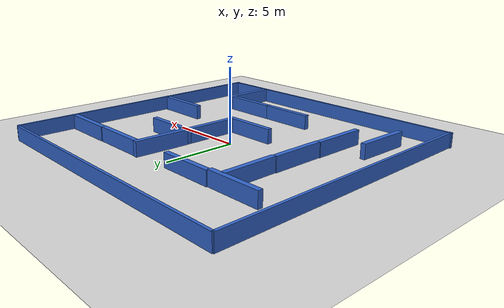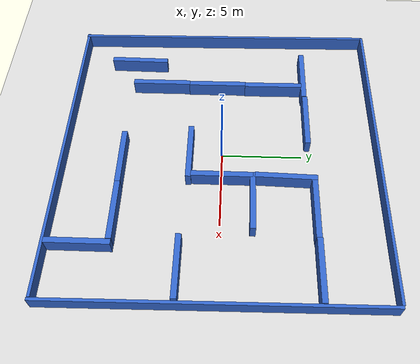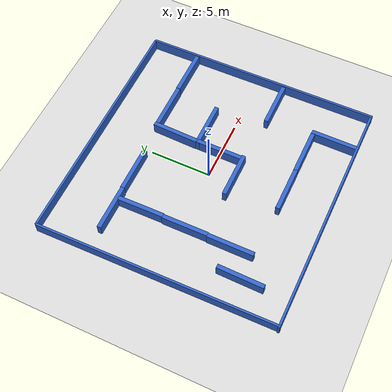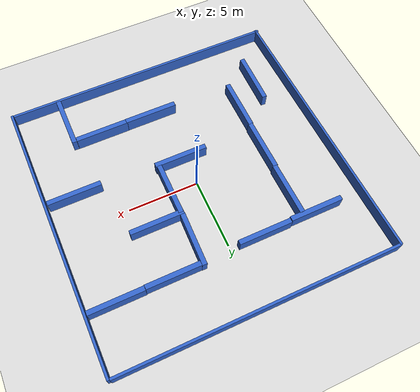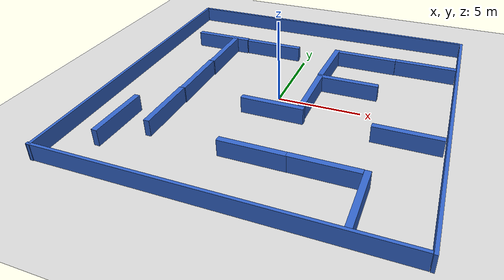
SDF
<sdf version='1.9'>
  <world name='default'>
    <plugin name='gz::sim::systems::Physics' filename='gz-sim-physics-system'/>
    <plugin name='gz::sim::systems::UserCommands' filename='gz-sim-user-commands-system'/>
    <plugin name='gz::sim::systems::SceneBroadcaster' filename='gz-sim-scene-broadcaster-system'/>
    <plugin name='gz::sim::systems::Sensors' filename='gz-sim-sensors-system'/>
    <gravity>0 0 -9.8</gravity>
    <magnetic_field>6e-06 2.3e-05 -4.2e-05</magnetic_field>
    <atmosphere type='adiabatic'/>
    <physics type='ode'>
      <max_step_size>0.001</max_step_size>
      <real_time_factor>1</real_time_factor>
      <real_time_update_rate>1000</real_time_update_rate>
    </physics>
    <scene>
      <ambient>0.8 0.8 0.8 1</ambient>
      <background>0.95 0.95 0.95 1</background>
      <shadows>false</shadows>
    </scene>
    <audio>
      <device>default</device>
    </audio>
    <wind/>
    <spherical_coordinates>
      <surface_model>EARTH_WGS84</surface_model>
      <latitude_deg>0</latitude_deg>
      <longitude_deg>0</longitude_deg>
      <elevation>0</elevation>
      <heading_deg>0</heading_deg>
    </spherical_coordinates>
    <gui fullscreen='false'>
      <camera name='user_camera'>
        <pose>0 -18 14 0.9 0 1.57</pose>
        <view_controller>orbit</view_controller>
        <projection_type>perspective</projection_type>
      </camera>
    </gui>
    <model name='ground_plane'>
      <static>true</static>
      <link name='link'>
        <collision name='collision'>
          <geometry>
            <plane>
              <normal>0 0 1</normal>
              <size>100 100</size>
            </plane>
          </geometry>
          <surface>
            <friction>
              <ode>
                <mu>100</mu>
                <mu2>50</mu2>
              </ode>
              <torsional>
                <ode/>
              </torsional>
            </friction>
            <contact>
              <ode/>
            </contact>
            <bounce/>
          </surface>
          <max_contacts>10</max_contacts>
        </collision>
        <visual name='visual'>
          <cast_shadows>false</cast_shadows>
          <geometry>
            <plane>
              <normal>0 0 1</normal>
              <size>100 100</size>
            </plane>
          </geometry>
          <material>
            <ambient>0.85 0.85 0.85 1</ambient>
            <diffuse>0.85 0.85 0.85 1</diffuse>
            <specular>0.05 0.05 0.05 1</specular>
          </material>
        </visual>
        <self_collide>false</self_collide>
        <enable_wind>false</enable_wind>
        <kinematic>false</kinematic>
        <pose>0 0 0 0 -0 0</pose>
        <inertial>
          <pose>0 0 0 0 -0 0</pose>
          <mass>1</mass>
          <inertia>
            <ixx>1</ixx>
            <ixy>0</ixy>
            <ixz>0</ixz>
            <iyy>1</iyy>
            <iyz>0</iyz>
            <izz>1</izz>
          </inertia>
        </inertial>
      </link>
      <pose>0 0 0 0 -0 0</pose>
      <self_collide>false</self_collide>
    </model>
    <model name='unit_box_1'>
      <link name='link'>
        <inertial>
          <mass>3.4111899999999999</mass>
          <inertia>
            <ixx>0.292767</ixx>
            <ixy>0</ixy>
            <ixz>0</ixz>
            <iyy>110.69499999999999</iyy>
            <iyz>0</iyz>
            <izz>110.419</izz>
          </inertia>
          <pose>0 0 0 0 -0 0</pose>
        </inertial>
        <self_collide>false</self_collide>
        <enable_wind>false</enable_wind>
        <kinematic>false</kinematic>
        <pose>-3.74545 -12.6579 0 0 -0 0</pose>
        <visual name='visual'>
          <geometry>
            <box>
              <size>19.708 0.172928 1</size>
            </box>
          </geometry>
          <material>
            <ambient>0.2 0.4 0.8 1</ambient>
            <diffuse>0.2 0.4 0.8 1</diffuse>
            <specular>0.05 0.05 0.05 1</specular>
          </material>
          <pose>0 0 0 0 -0 0</pose>
          <transparency>0</transparency>
          <cast_shadows>true</cast_shadows>
        </visual>
        <collision name='collision'>
          <laser_retro>0</laser_retro>
          <max_contacts>10</max_contacts>
          <pose>0 0 0 0 -0 0</pose>
          <geometry>
            <box>
              <size>19.708 0.172928 1</size>
            </box>
          </geometry>
          <surface>
            <friction>
              <ode>
                <mu>1</mu>
                <mu2>1</mu2>
                <fdir1>0 0 0</fdir1>
                <slip1>0</slip1>
                <slip2>0</slip2>
              </ode>
              <torsional>
                <coefficient>1</coefficient>
                <patch_radius>0</patch_radius>
                <surface_radius>0</surface_radius>
                <use_patch_radius>true</use_patch_radius>
                <ode>
                  <slip>0</slip>
                </ode>
              </torsional>
            </friction>
            <bounce>
              <restitution_coefficient>0</restitution_coefficient>
              <threshold>1000000</threshold>
            </bounce>
            <contact>
              <collide_without_contact>false</collide_without_contact>
              <collide_without_contact_bitmask>1</collide_without_contact_bitmask>
              <collide_bitmask>1</collide_bitmask>
              <ode>
                <soft_cfm>0</soft_cfm>
                <soft_erp>0.20000000000000001</soft_erp>
                <kp>10000000000000</kp>
                <kd>1</kd>
                <max_vel>0.01</max_vel>
                <min_depth>0</min_depth>
              </ode>
              <bullet>
                <split_impulse>true</split_impulse>
                <split_impulse_penetration_threshold>-0.01</split_impulse_penetration_threshold>
                <soft_cfm>0</soft_cfm>
                <soft_erp>0.20000000000000001</soft_erp>
                <kp>10000000000000</kp>
                <kd>1</kd>
              </bullet>
            </contact>
          </surface>
        </collision>
      </link>
      <static>true</static>
      <allow_auto_disable>true</allow_auto_disable>
      <pose>3.8441 2.79143 0.5 0 -0 0</pose>
      <self_collide>false</self_collide>
    </model>
    <model name='unit_box_1_clone_0'>
      <link name='link'>
        <inertial>
          <mass>3.4111899999999999</mass>
          <inertia>
            <ixx>0.292767</ixx>
            <ixy>0</ixy>
            <ixz>0</ixz>
            <iyy>110.69499999999999</iyy>
            <iyz>0</iyz>
            <izz>110.419</izz>
          </inertia>
          <pose>0 0 0 0 -0 0</pose>
        </inertial>
        <self_collide>false</self_collide>
        <enable_wind>false</enable_wind>
        <kinematic>false</kinematic>
        <pose>-3.74545 -12.6579 0 0 -0 0</pose>
        <visual name='visual'>
          <geometry>
            <box>
              <size>19.708 0.172928 1</size>
            </box>
          </geometry>
          <material>
            <ambient>0.2 0.4 0.8 1</ambient>
            <diffuse>0.2 0.4 0.8 1</diffuse>
            <specular>0.05 0.05 0.05 1</specular>
          </material>
          <pose>0 0 0 0 -0 0</pose>
          <transparency>0</transparency>
          <cast_shadows>true</cast_shadows>
        </visual>
        <collision name='collision'>
          <laser_retro>0</laser_retro>
          <max_contacts>10</max_contacts>
          <pose>0 0 0 0 -0 0</pose>
          <geometry>
            <box>
              <size>19.708 0.172928 1</size>
            </box>
          </geometry>
          <surface>
            <friction>
              <ode>
                <mu>1</mu>
                <mu2>1</mu2>
                <fdir1>0 0 0</fdir1>
                <slip1>0</slip1>
                <slip2>0</slip2>
              </ode>
              <torsional>
                <coefficient>1</coefficient>
                <patch_radius>0</patch_radius>
                <surface_radius>0</surface_radius>
                <use_patch_radius>true</use_patch_radius>
                <ode>
                  <slip>0</slip>
                </ode>
              </torsional>
            </friction>
            <bounce>
              <restitution_coefficient>0</restitution_coefficient>
              <threshold>1000000</threshold>
            </bounce>
            <contact>
              <collide_without_contact>false</collide_without_contact>
              <collide_without_contact_bitmask>1</collide_without_contact_bitmask>
              <collide_bitmask>1</collide_bitmask>
              <ode>
                <soft_cfm>0</soft_cfm>
                <soft_erp>0.20000000000000001</soft_erp>
                <kp>10000000000000</kp>
                <kd>1</kd>
                <max_vel>0.01</max_vel>
                <min_depth>0</min_depth>
              </ode>
              <bullet>
                <split_impulse>true</split_impulse>
                <split_impulse_penetration_threshold>-0.01</split_impulse_penetration_threshold>
                <soft_cfm>0</soft_cfm>
                <soft_erp>0.20000000000000001</soft_erp>
                <kp>10000000000000</kp>
                <kd>1</kd>
              </bullet>
            </contact>
          </surface>
        </collision>
      </link>
      <static>true</static>
      <allow_auto_disable>true</allow_auto_disable>
      <pose>3.72168 22.3601 0.5 0 -0 0</pose>
      <self_collide>false</self_collide>
    </model>
    <model name='unit_box_1_clone_1'>
      <link name='link'>
        <inertial>
          <mass>3.4111899999999999</mass>
          <inertia>
            <ixx>0.292767</ixx>
            <ixy>0</ixy>
            <ixz>0</ixz>
            <iyy>110.69499999999999</iyy>
            <iyz>0</iyz>
            <izz>110.419</izz>
          </inertia>
          <pose>0 0 0 0 -0 0</pose>
        </inertial>
        <self_collide>false</self_collide>
        <enable_wind>false</enable_wind>
        <kinematic>false</kinematic>
        <pose>-3.74545 -12.6579 0 0 -0 0</pose>
        <visual name='visual'>
          <geometry>
            <box>
              <size>19.708 0.172928 1</size>
            </box>
          </geometry>
          <material>
            <ambient>0.2 0.4 0.8 1</ambient>
            <diffuse>0.2 0.4 0.8 1</diffuse>
            <specular>0.05 0.05 0.05 1</specular>
          </material>
          <pose>0 0 0 0 -0 0</pose>
          <transparency>0</transparency>
          <cast_shadows>true</cast_shadows>
        </visual>
        <collision name='collision'>
          <laser_retro>0</laser_retro>
          <max_contacts>10</max_contacts>
          <pose>0 0 0 0 -0 0</pose>
          <geometry>
            <box>
              <size>19.708 0.172928 1</size>
            </box>
          </geometry>
          <surface>
            <friction>
              <ode>
                <mu>1</mu>
                <mu2>1</mu2>
                <fdir1>0 0 0</fdir1>
                <slip1>0</slip1>
                <slip2>0</slip2>
              </ode>
              <torsional>
                <coefficient>1</coefficient>
                <patch_radius>0</patch_radius>
                <surface_radius>0</surface_radius>
                <use_patch_radius>true</use_patch_radius>
                <ode>
                  <slip>0</slip>
                </ode>
              </torsional>
            </friction>
            <bounce>
              <restitution_coefficient>0</restitution_coefficient>
              <threshold>1000000</threshold>
            </bounce>
            <contact>
              <collide_without_contact>false</collide_without_contact>
              <collide_without_contact_bitmask>1</collide_without_contact_bitmask>
              <collide_bitmask>1</collide_bitmask>
              <ode>
                <soft_cfm>0</soft_cfm>
                <soft_erp>0.20000000000000001</soft_erp>
                <kp>10000000000000</kp>
                <kd>1</kd>
                <max_vel>0.01</max_vel>
                <min_depth>0</min_depth>
              </ode>
              <bullet>
                <split_impulse>true</split_impulse>
                <split_impulse_penetration_threshold>-0.01</split_impulse_penetration_threshold>
                <soft_cfm>0</soft_cfm>
                <soft_erp>0.20000000000000001</soft_erp>
                <kp>10000000000000</kp>
                <kd>1</kd>
              </bullet>
            </contact>
          </surface>
        </collision>
      </link>
      <static>true</static>
      <allow_auto_disable>true</allow_auto_disable>
      <pose>-22.4319 3.45289 0.5 0 -0 1.58394</pose>
      <self_collide>false</self_collide>
    </model>
    <model name='unit_box_1_clone_2'>
      <link name='link'>
        <inertial>
          <mass>3.4111899999999999</mass>
          <inertia>
            <ixx>0.292767</ixx>
            <ixy>0</ixy>
            <ixz>0</ixz>
            <iyy>110.69499999999999</iyy>
            <iyz>0</iyz>
            <izz>110.419</izz>
          </inertia>
          <pose>0 0 0 0 -0 0</pose>
        </inertial>
        <self_collide>false</self_collide>
        <enable_wind>false</enable_wind>
        <kinematic>false</kinematic>
        <pose>-3.74545 -12.6579 0 0 -0 0</pose>
        <visual name='visual'>
          <geometry>
            <box>
              <size>19.708 0.172928 1</size>
            </box>
          </geometry>
          <material>
            <ambient>0.2 0.4 0.8 1</ambient>
            <diffuse>0.2 0.4 0.8 1</diffuse>
            <specular>0.05 0.05 0.05 1</specular>
          </material>
          <pose>0 0 0 0 -0 0</pose>
          <transparency>0</transparency>
          <cast_shadows>true</cast_shadows>
        </visual>
        <collision name='collision'>
          <laser_retro>0</laser_retro>
          <max_contacts>10</max_contacts>
          <pose>0 0 0 0 -0 0</pose>
          <geometry>
            <box>
              <size>19.708 0.172928 1</size>
            </box>
          </geometry>
          <surface>
            <friction>
              <ode>
                <mu>1</mu>
                <mu2>1</mu2>
                <fdir1>0 0 0</fdir1>
                <slip1>0</slip1>
                <slip2>0</slip2>
              </ode>
              <torsional>
                <coefficient>1</coefficient>
                <patch_radius>0</patch_radius>
                <surface_radius>0</surface_radius>
                <use_patch_radius>true</use_patch_radius>
                <ode>
                  <slip>0</slip>
                </ode>
              </torsional>
            </friction>
            <bounce>
              <restitution_coefficient>0</restitution_coefficient>
              <threshold>1000000</threshold>
            </bounce>
            <contact>
              <collide_without_contact>false</collide_without_contact>
              <collide_without_contact_bitmask>1</collide_without_contact_bitmask>
              <collide_bitmask>1</collide_bitmask>
              <ode>
                <soft_cfm>0</soft_cfm>
                <soft_erp>0.20000000000000001</soft_erp>
                <kp>10000000000000</kp>
                <kd>1</kd>
                <max_vel>0.01</max_vel>
                <min_depth>0</min_depth>
              </ode>
              <bullet>
                <split_impulse>true</split_impulse>
                <split_impulse_penetration_threshold>-0.01</split_impulse_penetration_threshold>
                <soft_cfm>0</soft_cfm>
                <soft_erp>0.20000000000000001</soft_erp>
                <kp>10000000000000</kp>
                <kd>1</kd>
              </bullet>
            </contact>
          </surface>
        </collision>
      </link>
      <static>true</static>
      <allow_auto_disable>true</allow_auto_disable>
      <pose>-2.68766 3.53582 0.5 0 -0 1.57784</pose>
      <self_collide>false</self_collide>
    </model>
    <model name='unit_box_2'>
      <link name='link'>
        <inertial>
          <mass>1.2841499999999999</mass>
          <inertia>
            <ixx>0.119343</ixx>
            <ixy>0</ixy>
            <ixz>0</ixz>
            <iyy>1.6382699999999999</iyy>
            <iyz>0</iyz>
            <izz>1.54359</izz>
          </inertia>
          <pose>0 0 0 0 -0 0</pose>
        </inertial>
        <self_collide>false</self_collide>
        <enable_wind>false</enable_wind>
        <kinematic>false</kinematic>
        <pose>2.81509 0.263811 0 0 -0 0</pose>
        <visual name='visual'>
          <geometry>
            <box>
              <size>3.78274 0.339449 1</size>
            </box>
          </geometry>
          <material>
            <ambient>0.2 0.4 0.8 1</ambient>
            <diffuse>0.2 0.4 0.8 1</diffuse>
            <specular>0.05 0.05 0.05 1</specular>
          </material>
          <pose>0 0 0 0 -0 0</pose>
          <transparency>0</transparency>
          <cast_shadows>true</cast_shadows>
        </visual>
        <collision name='collision'>
          <laser_retro>0</laser_retro>
          <max_contacts>10</max_contacts>
          <pose>0 0 0 0 -0 0</pose>
          <geometry>
            <box>
              <size>3.78274 0.339449 1</size>
            </box>
          </geometry>
          <surface>
            <friction>
              <ode>
                <mu>1</mu>
                <mu2>1</mu2>
                <fdir1>0 0 0</fdir1>
                <slip1>0</slip1>
                <slip2>0</slip2>
              </ode>
              <torsional>
                <coefficient>1</coefficient>
                <patch_radius>0</patch_radius>
                <surface_radius>0</surface_radius>
                <use_patch_radius>true</use_patch_radius>
                <ode>
                  <slip>0</slip>
                </ode>
              </torsional>
            </friction>
            <bounce>
              <restitution_coefficient>0</restitution_coefficient>
              <threshold>1000000</threshold>
            </bounce>
            <contact>
              <collide_without_contact>false</collide_without_contact>
              <collide_without_contact_bitmask>1</collide_without_contact_bitmask>
              <collide_bitmask>1</collide_bitmask>
              <ode>
                <soft_cfm>0</soft_cfm>
                <soft_erp>0.20000000000000001</soft_erp>
                <kp>10000000000000</kp>
                <kd>1</kd>
                <max_vel>0.01</max_vel>
                <min_depth>0</min_depth>
              </ode>
              <bullet>
                <split_impulse>true</split_impulse>
                <split_impulse_penetration_threshold>-0.01</split_impulse_penetration_threshold>
                <soft_cfm>0</soft_cfm>
                <soft_erp>0.20000000000000001</soft_erp>
                <kp>10000000000000</kp>
                <kd>1</kd>
              </bullet>
            </contact>
          </surface>
        </collision>
      </link>
      <static>true</static>
      <allow_auto_disable>true</allow_auto_disable>
      <pose>-5.23174 5.09911 0.421096 0 -0 0</pose>
      <self_collide>false</self_collide>
    </model>
    <model name='unit_box_2_clone'>
      <link name='link'>
        <inertial>
          <mass>1.2841499999999999</mass>
          <inertia>
            <ixx>0.119343</ixx>
            <ixy>0</ixy>
            <ixz>0</ixz>
            <iyy>1.6382699999999999</iyy>
            <iyz>0</iyz>
            <izz>1.54359</izz>
          </inertia>
          <pose>0 0 0 0 -0 0</pose>
        </inertial>
        <self_collide>false</self_collide>
        <enable_wind>false</enable_wind>
        <kinematic>false</kinematic>
        <pose>2.81509 0.263811 0 0 -0 0</pose>
        <visual name='visual'>
          <geometry>
            <box>
              <size>3.78274 0.339449 1</size>
            </box>
          </geometry>
          <material>
            <ambient>0.2 0.4 0.8 1</ambient>
            <diffuse>0.2 0.4 0.8 1</diffuse>
            <specular>0.05 0.05 0.05 1</specular>
          </material>
          <pose>0 0 0 0 -0 0</pose>
          <transparency>0</transparency>
          <cast_shadows>true</cast_shadows>
        </visual>
        <collision name='collision'>
          <laser_retro>0</laser_retro>
          <max_contacts>10</max_contacts>
          <pose>0 0 0 0 -0 0</pose>
          <geometry>
            <box>
              <size>3.78274 0.339449 1</size>
            </box>
          </geometry>
          <surface>
            <friction>
              <ode>
                <mu>1</mu>
                <mu2>1</mu2>
                <fdir1>0 0 0</fdir1>
                <slip1>0</slip1>
                <slip2>0</slip2>
              </ode>
              <torsional>
                <coefficient>1</coefficient>
                <patch_radius>0</patch_radius>
                <surface_radius>0</surface_radius>
                <use_patch_radius>true</use_patch_radius>
                <ode>
                  <slip>0</slip>
                </ode>
              </torsional>
            </friction>
            <bounce>
              <restitution_coefficient>0</restitution_coefficient>
              <threshold>1000000</threshold>
            </bounce>
            <contact>
              <collide_without_contact>false</collide_without_contact>
              <collide_without_contact_bitmask>1</collide_without_contact_bitmask>
              <collide_bitmask>1</collide_bitmask>
              <ode>
                <soft_cfm>0</soft_cfm>
                <soft_erp>0.20000000000000001</soft_erp>
                <kp>10000000000000</kp>
                <kd>1</kd>
                <max_vel>0.01</max_vel>
                <min_depth>0</min_depth>
              </ode>
              <bullet>
                <split_impulse>true</split_impulse>
                <split_impulse_penetration_threshold>-0.01</split_impulse_penetration_threshold>
                <soft_cfm>0</soft_cfm>
                <soft_erp>0.20000000000000001</soft_erp>
                <kp>10000000000000</kp>
                <kd>1</kd>
              </bullet>
            </contact>
          </surface>
        </collision>
      </link>
      <static>true</static>
      <allow_auto_disable>true</allow_auto_disable>
      <pose>5.12167 5.3781 0.5 0 -0 0</pose>
      <self_collide>false</self_collide>
    </model>
    <model name='unit_box_2_clone_clone'>
      <link name='link'>
        <inertial>
          <mass>1.2841499999999999</mass>
          <inertia>
            <ixx>0.119343</ixx>
            <ixy>0</ixy>
            <ixz>0</ixz>
            <iyy>1.6382699999999999</iyy>
            <iyz>0</iyz>
            <izz>1.54359</izz>
          </inertia>
          <pose>0 0 0 0 -0 0</pose>
        </inertial>
        <self_collide>false</self_collide>
        <enable_wind>false</enable_wind>
        <kinematic>false</kinematic>
        <pose>2.81509 0.263811 0 0 -0 0</pose>
        <visual name='visual'>
          <geometry>
            <box>
              <size>3.78274 0.339449 1</size>
            </box>
          </geometry>
          <material>
            <ambient>0.2 0.4 0.8 1</ambient>
            <diffuse>0.2 0.4 0.8 1</diffuse>
            <specular>0.05 0.05 0.05 1</specular>
          </material>
          <pose>0 0 0 0 -0 0</pose>
          <transparency>0</transparency>
          <cast_shadows>true</cast_shadows>
        </visual>
        <collision name='collision'>
          <laser_retro>0</laser_retro>
          <max_contacts>10</max_contacts>
          <pose>0 0 0 0 -0 0</pose>
          <geometry>
            <box>
              <size>3.78274 0.339449 1</size>
            </box>
          </geometry>
          <surface>
            <friction>
              <ode>
                <mu>1</mu>
                <mu2>1</mu2>
                <fdir1>0 0 0</fdir1>
                <slip1>0</slip1>
                <slip2>0</slip2>
              </ode>
              <torsional>
                <coefficient>1</coefficient>
                <patch_radius>0</patch_radius>
                <surface_radius>0</surface_radius>
                <use_patch_radius>true</use_patch_radius>
                <ode>
                  <slip>0</slip>
                </ode>
              </torsional>
            </friction>
            <bounce>
              <restitution_coefficient>0</restitution_coefficient>
              <threshold>1000000</threshold>
            </bounce>
            <contact>
              <collide_without_contact>false</collide_without_contact>
              <collide_without_contact_bitmask>1</collide_without_contact_bitmask>
              <collide_bitmask>1</collide_bitmask>
              <ode>
                <soft_cfm>0</soft_cfm>
                <soft_erp>0.20000000000000001</soft_erp>
                <kp>10000000000000</kp>
                <kd>1</kd>
                <max_vel>0.01</max_vel>
                <min_depth>0</min_depth>
              </ode>
              <bullet>
                <split_impulse>true</split_impulse>
                <split_impulse_penetration_threshold>-0.01</split_impulse_penetration_threshold>
                <soft_cfm>0</soft_cfm>
                <soft_erp>0.20000000000000001</soft_erp>
                <kp>10000000000000</kp>
                <kd>1</kd>
              </bullet>
            </contact>
          </surface>
        </collision>
      </link>
      <static>true</static>
      <allow_auto_disable>true</allow_auto_disable>
      <pose>1.3331 5.34674 0.5 0 -0 0</pose>
      <self_collide>false</self_collide>
    </model>
    <model name='unit_box_2_clone_clone_clone_0'>
      <link name='link'>
        <inertial>
          <mass>1.2841499999999999</mass>
          <inertia>
            <ixx>0.119343</ixx>
            <ixy>0</ixy>
            <ixz>0</ixz>
            <iyy>1.6382699999999999</iyy>
            <iyz>0</iyz>
            <izz>1.54359</izz>
          </inertia>
          <pose>0 0 0 0 -0 0</pose>
        </inertial>
        <self_collide>false</self_collide>
        <enable_wind>false</enable_wind>
        <kinematic>false</kinematic>
        <pose>2.81509 0.263811 0 0 -0 0</pose>
        <visual name='visual'>
          <geometry>
            <box>
              <size>3.78274 0.339449 1</size>
            </box>
          </geometry>
          <material>
            <ambient>0.2 0.4 0.8 1</ambient>
            <diffuse>0.2 0.4 0.8 1</diffuse>
            <specular>0.05 0.05 0.05 1</specular>
          </material>
          <pose>0 0 0 0 -0 0</pose>
          <transparency>0</transparency>
          <cast_shadows>true</cast_shadows>
        </visual>
        <collision name='collision'>
          <laser_retro>0</laser_retro>
          <max_contacts>10</max_contacts>
          <pose>0 0 0 0 -0 0</pose>
          <geometry>
            <box>
              <size>3.78274 0.339449 1</size>
            </box>
          </geometry>
          <surface>
            <friction>
              <ode>
                <mu>1</mu>
                <mu2>1</mu2>
                <fdir1>0 0 0</fdir1>
                <slip1>0</slip1>
                <slip2>0</slip2>
              </ode>
              <torsional>
                <coefficient>1</coefficient>
                <patch_radius>0</patch_radius>
                <surface_radius>0</surface_radius>
                <use_patch_radius>true</use_patch_radius>
                <ode>
                  <slip>0</slip>
                </ode>
              </torsional>
            </friction>
            <bounce>
              <restitution_coefficient>0</restitution_coefficient>
              <threshold>1000000</threshold>
            </bounce>
            <contact>
              <collide_without_contact>false</collide_without_contact>
              <collide_without_contact_bitmask>1</collide_without_contact_bitmask>
              <collide_bitmask>1</collide_bitmask>
              <ode>
                <soft_cfm>0</soft_cfm>
                <soft_erp>0.20000000000000001</soft_erp>
                <kp>10000000000000</kp>
                <kd>1</kd>
                <max_vel>0.01</max_vel>
                <min_depth>0</min_depth>
              </ode>
              <bullet>
                <split_impulse>true</split_impulse>
                <split_impulse_penetration_threshold>-0.01</split_impulse_penetration_threshold>
                <soft_cfm>0</soft_cfm>
                <soft_erp>0.20000000000000001</soft_erp>
                <kp>10000000000000</kp>
                <kd>1</kd>
              </bullet>
            </contact>
          </surface>
        </collision>
      </link>
      <static>true</static>
      <allow_auto_disable>true</allow_auto_disable>
      <pose>0.901326 1.64402 0.5 0 -0 0</pose>
      <self_collide>false</self_collide>
    </model>
    <model name='unit_box_2_clone_clone_clone_clone'>
      <link name='link'>
        <inertial>
          <mass>1.2841499999999999</mass>
          <inertia>
            <ixx>0.119343</ixx>
            <ixy>0</ixy>
            <ixz>0</ixz>
            <iyy>1.6382699999999999</iyy>
            <iyz>0</iyz>
            <izz>1.54359</izz>
          </inertia>
          <pose>0 0 0 0 -0 0</pose>
        </inertial>
        <self_collide>false</self_collide>
        <enable_wind>false</enable_wind>
        <kinematic>false</kinematic>
        <pose>2.81509 0.263811 0 0 -0 0</pose>
        <visual name='visual'>
          <geometry>
            <box>
              <size>3.78274 0.339449 1</size>
            </box>
          </geometry>
          <material>
            <ambient>0.2 0.4 0.8 1</ambient>
            <diffuse>0.2 0.4 0.8 1</diffuse>
            <specular>0.05 0.05 0.05 1</specular>
          </material>
          <pose>0 0 0 0 -0 0</pose>
          <transparency>0</transparency>
          <cast_shadows>true</cast_shadows>
        </visual>
        <collision name='collision'>
          <laser_retro>0</laser_retro>
          <max_contacts>10</max_contacts>
          <pose>0 0 0 0 -0 0</pose>
          <geometry>
            <box>
              <size>3.78274 0.339449 1</size>
            </box>
          </geometry>
          <surface>
            <friction>
              <ode>
                <mu>1</mu>
                <mu2>1</mu2>
                <fdir1>0 0 0</fdir1>
                <slip1>0</slip1>
                <slip2>0</slip2>
              </ode>
              <torsional>
                <coefficient>1</coefficient>
                <patch_radius>0</patch_radius>
                <surface_radius>0</surface_radius>
                <use_patch_radius>true</use_patch_radius>
                <ode>
                  <slip>0</slip>
                </ode>
              </torsional>
            </friction>
            <bounce>
              <restitution_coefficient>0</restitution_coefficient>
              <threshold>1000000</threshold>
            </bounce>
            <contact>
              <collide_without_contact>false</collide_without_contact>
              <collide_without_contact_bitmask>1</collide_without_contact_bitmask>
              <collide_bitmask>1</collide_bitmask>
              <ode>
                <soft_cfm>0</soft_cfm>
                <soft_erp>0.20000000000000001</soft_erp>
                <kp>10000000000000</kp>
                <kd>1</kd>
                <max_vel>0.01</max_vel>
                <min_depth>0</min_depth>
              </ode>
              <bullet>
                <split_impulse>true</split_impulse>
                <split_impulse_penetration_threshold>-0.01</split_impulse_penetration_threshold>
                <soft_cfm>0</soft_cfm>
                <soft_erp>0.20000000000000001</soft_erp>
                <kp>10000000000000</kp>
                <kd>1</kd>
              </bullet>
            </contact>
          </surface>
        </collision>
      </link>
      <static>true</static>
      <allow_auto_disable>true</allow_auto_disable>
      <pose>1.85431 6.73897 0.5 0 0 -1.60238</pose>
      <self_collide>false</self_collide>
    </model>
    <model name='unit_box_2_clone_clone_clone_clone_clone'>
      <link name='link'>
        <inertial>
          <mass>1.2841499999999999</mass>
          <inertia>
            <ixx>0.119343</ixx>
            <ixy>0</ixy>
            <ixz>0</ixz>
            <iyy>1.6382699999999999</iyy>
            <iyz>0</iyz>
            <izz>1.54359</izz>
          </inertia>
          <pose>0 0 0 0 -0 0</pose>
        </inertial>
        <self_collide>false</self_collide>
        <enable_wind>false</enable_wind>
        <kinematic>false</kinematic>
        <pose>2.81509 0.263811 0 0 -0 0</pose>
        <visual name='visual'>
          <geometry>
            <box>
              <size>3.78274 0.339449 1</size>
            </box>
          </geometry>
          <material>
            <ambient>0.2 0.4 0.8 1</ambient>
            <diffuse>0.2 0.4 0.8 1</diffuse>
            <specular>0.05 0.05 0.05 1</specular>
          </material>
          <pose>0 0 0 0 -0 0</pose>
          <transparency>0</transparency>
          <cast_shadows>true</cast_shadows>
        </visual>
        <collision name='collision'>
          <laser_retro>0</laser_retro>
          <max_contacts>10</max_contacts>
          <pose>0 0 0 0 -0 0</pose>
          <geometry>
            <box>
              <size>3.78274 0.339449 1</size>
            </box>
          </geometry>
          <surface>
            <friction>
              <ode>
                <mu>1</mu>
                <mu2>1</mu2>
                <fdir1>0 0 0</fdir1>
                <slip1>0</slip1>
                <slip2>0</slip2>
              </ode>
              <torsional>
                <coefficient>1</coefficient>
                <patch_radius>0</patch_radius>
                <surface_radius>0</surface_radius>
                <use_patch_radius>true</use_patch_radius>
                <ode>
                  <slip>0</slip>
                </ode>
              </torsional>
            </friction>
            <bounce>
              <restitution_coefficient>0</restitution_coefficient>
              <threshold>1000000</threshold>
            </bounce>
            <contact>
              <collide_without_contact>false</collide_without_contact>
              <collide_without_contact_bitmask>1</collide_without_contact_bitmask>
              <collide_bitmask>1</collide_bitmask>
              <ode>
                <soft_cfm>0</soft_cfm>
                <soft_erp>0.20000000000000001</soft_erp>
                <kp>10000000000000</kp>
                <kd>1</kd>
                <max_vel>0.01</max_vel>
                <min_depth>0</min_depth>
              </ode>
              <bullet>
                <split_impulse>true</split_impulse>
                <split_impulse_penetration_threshold>-0.01</split_impulse_penetration_threshold>
                <soft_cfm>0</soft_cfm>
                <soft_erp>0.20000000000000001</soft_erp>
                <kp>10000000000000</kp>
                <kd>1</kd>
              </bullet>
            </contact>
          </surface>
        </collision>
      </link>
      <static>true</static>
      <allow_auto_disable>true</allow_auto_disable>
      <pose>-9.03401 5.04074 0.476549 0 -0 0</pose>
      <self_collide>false</self_collide>
    </model>
    <model name='unit_box_2_clone_clone_clone_clone_clone_0'>
      <link name='link'>
        <inertial>
          <mass>1.2841499999999999</mass>
          <inertia>
            <ixx>0.119343</ixx>
            <ixy>0</ixy>
            <ixz>0</ixz>
            <iyy>1.6382699999999999</iyy>
            <iyz>0</iyz>
            <izz>1.54359</izz>
          </inertia>
          <pose>0 0 0 0 -0 0</pose>
        </inertial>
        <self_collide>false</self_collide>
        <enable_wind>false</enable_wind>
        <kinematic>false</kinematic>
        <pose>2.81509 0.263811 0 0 -0 0</pose>
        <visual name='visual'>
          <geometry>
            <box>
              <size>3.78274 0.339449 1</size>
            </box>
          </geometry>
          <material>
            <ambient>0.2 0.4 0.8 1</ambient>
            <diffuse>0.2 0.4 0.8 1</diffuse>
            <specular>0.05 0.05 0.05 1</specular>
          </material>
          <pose>0 0 0 0 -0 0</pose>
          <transparency>0</transparency>
          <cast_shadows>true</cast_shadows>
        </visual>
        <collision name='collision'>
          <laser_retro>0</laser_retro>
          <max_contacts>10</max_contacts>
          <pose>0 0 0 0 -0 0</pose>
          <geometry>
            <box>
              <size>3.78274 0.339449 1</size>
            </box>
          </geometry>
          <surface>
            <friction>
              <ode>
                <mu>1</mu>
                <mu2>1</mu2>
                <fdir1>0 0 0</fdir1>
                <slip1>0</slip1>
                <slip2>0</slip2>
              </ode>
              <torsional>
                <coefficient>1</coefficient>
                <patch_radius>0</patch_radius>
                <surface_radius>0</surface_radius>
                <use_patch_radius>true</use_patch_radius>
                <ode>
                  <slip>0</slip>
                </ode>
              </torsional>
            </friction>
            <bounce>
              <restitution_coefficient>0</restitution_coefficient>
              <threshold>1000000</threshold>
            </bounce>
            <contact>
              <collide_without_contact>false</collide_without_contact>
              <collide_without_contact_bitmask>1</collide_without_contact_bitmask>
              <collide_bitmask>1</collide_bitmask>
              <ode>
                <soft_cfm>0</soft_cfm>
                <soft_erp>0.20000000000000001</soft_erp>
                <kp>10000000000000</kp>
                <kd>1</kd>
                <max_vel>0.01</max_vel>
                <min_depth>0</min_depth>
              </ode>
              <bullet>
                <split_impulse>true</split_impulse>
                <split_impulse_penetration_threshold>-0.01</split_impulse_penetration_threshold>
                <soft_cfm>0</soft_cfm>
                <soft_erp>0.20000000000000001</soft_erp>
                <kp>10000000000000</kp>
                <kd>1</kd>
              </bullet>
            </contact>
          </surface>
        </collision>
      </link>
      <static>true</static>
      <allow_auto_disable>true</allow_auto_disable>
      <pose>-2.48431 -2.26154 0.5 0 -0 0</pose>
      <self_collide>false</self_collide>
    </model>
    <model name='unit_box_2_clone_clone_clone_clone_clone_1'>
      <link name='link'>
        <inertial>
          <mass>1.2841499999999999</mass>
          <inertia>
            <ixx>0.119343</ixx>
            <ixy>0</ixy>
            <ixz>0</ixz>
            <iyy>1.6382699999999999</iyy>
            <iyz>0</iyz>
            <izz>1.54359</izz>
          </inertia>
          <pose>0 0 0 0 -0 0</pose>
        </inertial>
        <self_collide>false</self_collide>
        <enable_wind>false</enable_wind>
        <kinematic>false</kinematic>
        <pose>2.81509 0.263811 0 0 -0 0</pose>
        <visual name='visual'>
          <geometry>
            <box>
              <size>3.78274 0.339449 1</size>
            </box>
          </geometry>
          <material>
            <ambient>0.2 0.4 0.8 1</ambient>
            <diffuse>0.2 0.4 0.8 1</diffuse>
            <specular>0.05 0.05 0.05 1</specular>
          </material>
          <pose>0 0 0 0 -0 0</pose>
          <transparency>0</transparency>
          <cast_shadows>true</cast_shadows>
        </visual>
        <collision name='collision'>
          <laser_retro>0</laser_retro>
          <max_contacts>10</max_contacts>
          <pose>0 0 0 0 -0 0</pose>
          <geometry>
            <box>
              <size>3.78274 0.339449 1</size>
            </box>
          </geometry>
          <surface>
            <friction>
              <ode>
                <mu>1</mu>
                <mu2>1</mu2>
                <fdir1>0 0 0</fdir1>
                <slip1>0</slip1>
                <slip2>0</slip2>
              </ode>
              <torsional>
                <coefficient>1</coefficient>
                <patch_radius>0</patch_radius>
                <surface_radius>0</surface_radius>
                <use_patch_radius>true</use_patch_radius>
                <ode>
                  <slip>0</slip>
                </ode>
              </torsional>
            </friction>
            <bounce>
              <restitution_coefficient>0</restitution_coefficient>
              <threshold>1000000</threshold>
            </bounce>
            <contact>
              <collide_without_contact>false</collide_without_contact>
              <collide_without_contact_bitmask>1</collide_without_contact_bitmask>
              <collide_bitmask>1</collide_bitmask>
              <ode>
                <soft_cfm>0</soft_cfm>
                <soft_erp>0.20000000000000001</soft_erp>
                <kp>10000000000000</kp>
                <kd>1</kd>
                <max_vel>0.01</max_vel>
                <min_depth>0</min_depth>
              </ode>
              <bullet>
                <split_impulse>true</split_impulse>
                <split_impulse_penetration_threshold>-0.01</split_impulse_penetration_threshold>
                <soft_cfm>0</soft_cfm>
                <soft_erp>0.20000000000000001</soft_erp>
                <kp>10000000000000</kp>
                <kd>1</kd>
              </bullet>
            </contact>
          </surface>
        </collision>
      </link>
      <static>true</static>
      <allow_auto_disable>true</allow_auto_disable>
      <pose>5.12876 -2.54212 0.5 0 -0 0</pose>
      <self_collide>false</self_collide>
    </model>
    <model name='unit_box_2_clone_clone_clone_clone_clone_2'>
      <link name='link'>
        <inertial>
          <mass>1.2841499999999999</mass>
          <inertia>
            <ixx>0.119343</ixx>
            <ixy>0</ixy>
            <ixz>0</ixz>
            <iyy>1.6382699999999999</iyy>
            <iyz>0</iyz>
            <izz>1.54359</izz>
          </inertia>
          <pose>0 0 0 0 -0 0</pose>
        </inertial>
        <self_collide>false</self_collide>
        <enable_wind>false</enable_wind>
        <kinematic>false</kinematic>
        <pose>2.81509 0.263811 0 0 -0 0</pose>
        <visual name='visual'>
          <geometry>
            <box>
              <size>3.78274 0.339449 1</size>
            </box>
          </geometry>
          <material>
            <ambient>0.2 0.4 0.8 1</ambient>
            <diffuse>0.2 0.4 0.8 1</diffuse>
            <specular>0.05 0.05 0.05 1</specular>
          </material>
          <pose>0 0 0 0 -0 0</pose>
          <transparency>0</transparency>
          <cast_shadows>true</cast_shadows>
        </visual>
        <collision name='collision'>
          <laser_retro>0</laser_retro>
          <max_contacts>10</max_contacts>
          <pose>0 0 0 0 -0 0</pose>
          <geometry>
            <box>
              <size>3.78274 0.339449 1</size>
            </box>
          </geometry>
          <surface>
            <friction>
              <ode>
                <mu>1</mu>
                <mu2>1</mu2>
                <fdir1>0 0 0</fdir1>
                <slip1>0</slip1>
                <slip2>0</slip2>
              </ode>
              <torsional>
                <coefficient>1</coefficient>
                <patch_radius>0</patch_radius>
                <surface_radius>0</surface_radius>
                <use_patch_radius>true</use_patch_radius>
                <ode>
                  <slip>0</slip>
                </ode>
              </torsional>
            </friction>
            <bounce>
              <restitution_coefficient>0</restitution_coefficient>
              <threshold>1000000</threshold>
            </bounce>
            <contact>
              <collide_without_contact>false</collide_without_contact>
              <collide_without_contact_bitmask>1</collide_without_contact_bitmask>
              <collide_bitmask>1</collide_bitmask>
              <ode>
                <soft_cfm>0</soft_cfm>
                <soft_erp>0.20000000000000001</soft_erp>
                <kp>10000000000000</kp>
                <kd>1</kd>
                <max_vel>0.01</max_vel>
                <min_depth>0</min_depth>
              </ode>
              <bullet>
                <split_impulse>true</split_impulse>
                <split_impulse_penetration_threshold>-0.01</split_impulse_penetration_threshold>
                <soft_cfm>0</soft_cfm>
                <soft_erp>0.20000000000000001</soft_erp>
                <kp>10000000000000</kp>
                <kd>1</kd>
              </bullet>
            </contact>
          </surface>
        </collision>
      </link>
      <static>true</static>
      <allow_auto_disable>true</allow_auto_disable>
      <pose>1.77162 -6.44216 0.5 0 -0 0</pose>
      <self_collide>false</self_collide>
    </model>
    <model name='unit_box_2_clone_clone_clone_clone_clone_3'>
      <link name='link'>
        <inertial>
          <mass>1.2841499999999999</mass>
          <inertia>
            <ixx>0.119343</ixx>
            <ixy>0</ixy>
            <ixz>0</ixz>
            <iyy>1.6382699999999999</iyy>
            <iyz>0</iyz>
            <izz>1.54359</izz>
          </inertia>
          <pose>0 0 0 0 -0 0</pose>
        </inertial>
        <self_collide>false</self_collide>
        <enable_wind>false</enable_wind>
        <kinematic>false</kinematic>
        <pose>2.81509 0.263811 0 0 -0 0</pose>
        <visual name='visual'>
          <geometry>
            <box>
              <size>3.78274 0.339449 1</size>
            </box>
          </geometry>
          <material>
            <ambient>0.2 0.4 0.8 1</ambient>
            <diffuse>0.2 0.4 0.8 1</diffuse>
            <specular>0.05 0.05 0.05 1</specular>
          </material>
          <pose>0 0 0 0 -0 0</pose>
          <transparency>0</transparency>
          <cast_shadows>true</cast_shadows>
        </visual>
        <collision name='collision'>
          <laser_retro>0</laser_retro>
          <max_contacts>10</max_contacts>
          <pose>0 0 0 0 -0 0</pose>
          <geometry>
            <box>
              <size>3.78274 0.339449 1</size>
            </box>
          </geometry>
          <surface>
            <friction>
              <ode>
                <mu>1</mu>
                <mu2>1</mu2>
                <fdir1>0 0 0</fdir1>
                <slip1>0</slip1>
                <slip2>0</slip2>
              </ode>
              <torsional>
                <coefficient>1</coefficient>
                <patch_radius>0</patch_radius>
                <surface_radius>0</surface_radius>
                <use_patch_radius>true</use_patch_radius>
                <ode>
                  <slip>0</slip>
                </ode>
              </torsional>
            </friction>
            <bounce>
              <restitution_coefficient>0</restitution_coefficient>
              <threshold>1000000</threshold>
            </bounce>
            <contact>
              <collide_without_contact>false</collide_without_contact>
              <collide_without_contact_bitmask>1</collide_without_contact_bitmask>
              <collide_bitmask>1</collide_bitmask>
              <ode>
                <soft_cfm>0</soft_cfm>
                <soft_erp>0.20000000000000001</soft_erp>
                <kp>10000000000000</kp>
                <kd>1</kd>
                <max_vel>0.01</max_vel>
                <min_depth>0</min_depth>
              </ode>
              <bullet>
                <split_impulse>true</split_impulse>
                <split_impulse_penetration_threshold>-0.01</split_impulse_penetration_threshold>
                <soft_cfm>0</soft_cfm>
                <soft_erp>0.20000000000000001</soft_erp>
                <kp>10000000000000</kp>
                <kd>1</kd>
              </bullet>
            </contact>
          </surface>
        </collision>
      </link>
      <static>true</static>
      <allow_auto_disable>true</allow_auto_disable>
      <pose>-1.94717 -6.45324 0.5 0 -0 0</pose>
      <self_collide>false</self_collide>
    </model>
    <model name='unit_box_2_clone_clone_clone_clone_clone_4'>
      <link name='link'>
        <inertial>
          <mass>1.2841499999999999</mass>
          <inertia>
            <ixx>0.119343</ixx>
            <ixy>0</ixy>
            <ixz>0</ixz>
            <iyy>1.6382699999999999</iyy>
            <iyz>0</iyz>
            <izz>1.54359</izz>
          </inertia>
          <pose>0 0 0 0 -0 0</pose>
        </inertial>
        <self_collide>false</self_collide>
        <enable_wind>false</enable_wind>
        <kinematic>false</kinematic>
        <pose>2.81509 0.263811 0 0 -0 0</pose>
        <visual name='visual'>
          <geometry>
            <box>
              <size>3.78274 0.339449 1</size>
            </box>
          </geometry>
          <material>
            <ambient>0.2 0.4 0.8 1</ambient>
            <diffuse>0.2 0.4 0.8 1</diffuse>
            <specular>0.05 0.05 0.05 1</specular>
          </material>
          <pose>0 0 0 0 -0 0</pose>
          <transparency>0</transparency>
          <cast_shadows>true</cast_shadows>
        </visual>
        <collision name='collision'>
          <laser_retro>0</laser_retro>
          <max_contacts>10</max_contacts>
          <pose>0 0 0 0 -0 0</pose>
          <geometry>
            <box>
              <size>3.78274 0.339449 1</size>
            </box>
          </geometry>
          <surface>
            <friction>
              <ode>
                <mu>1</mu>
                <mu2>1</mu2>
                <fdir1>0 0 0</fdir1>
                <slip1>0</slip1>
                <slip2>0</slip2>
              </ode>
              <torsional>
                <coefficient>1</coefficient>
                <patch_radius>0</patch_radius>
                <surface_radius>0</surface_radius>
                <use_patch_radius>true</use_patch_radius>
                <ode>
                  <slip>0</slip>
                </ode>
              </torsional>
            </friction>
            <bounce>
              <restitution_coefficient>0</restitution_coefficient>
              <threshold>1000000</threshold>
            </bounce>
            <contact>
              <collide_without_contact>false</collide_without_contact>
              <collide_without_contact_bitmask>1</collide_without_contact_bitmask>
              <collide_bitmask>1</collide_bitmask>
              <ode>
                <soft_cfm>0</soft_cfm>
                <soft_erp>0.20000000000000001</soft_erp>
                <kp>10000000000000</kp>
                <kd>1</kd>
                <max_vel>0.01</max_vel>
                <min_depth>0</min_depth>
              </ode>
              <bullet>
                <split_impulse>true</split_impulse>
                <split_impulse_penetration_threshold>-0.01</split_impulse_penetration_threshold>
                <soft_cfm>0</soft_cfm>
                <soft_erp>0.20000000000000001</soft_erp>
                <kp>10000000000000</kp>
                <kd>1</kd>
              </bullet>
            </contact>
          </surface>
        </collision>
      </link>
      <static>true</static>
      <allow_auto_disable>true</allow_auto_disable>
      <pose>-5.55152 -1.39298 0.5 0 0 -1.57117</pose>
      <self_collide>false</self_collide>
    </model>
    <model name='unit_box_2_clone_clone_clone_clone_clone_5'>
      <link name='link'>
        <inertial>
          <mass>1.2841499999999999</mass>
          <inertia>
            <ixx>0.119343</ixx>
            <ixy>0</ixy>
            <ixz>0</ixz>
            <iyy>1.6382699999999999</iyy>
            <iyz>0</iyz>
            <izz>1.54359</izz>
          </inertia>
          <pose>0 0 0 0 -0 0</pose>
        </inertial>
        <self_collide>false</self_collide>
        <enable_wind>false</enable_wind>
        <kinematic>false</kinematic>
        <pose>2.81509 0.263811 0 0 -0 0</pose>
        <visual name='visual'>
          <geometry>
            <box>
              <size>3.78274 0.339449 1</size>
            </box>
          </geometry>
          <material>
            <ambient>0.2 0.4 0.8 1</ambient>
            <diffuse>0.2 0.4 0.8 1</diffuse>
            <specular>0.05 0.05 0.05 1</specular>
          </material>
          <pose>0 0 0 0 -0 0</pose>
          <transparency>0</transparency>
          <cast_shadows>true</cast_shadows>
        </visual>
        <collision name='collision'>
          <laser_retro>0</laser_retro>
          <max_contacts>10</max_contacts>
          <pose>0 0 0 0 -0 0</pose>
          <geometry>
            <box>
              <size>3.78274 0.339449 1</size>
            </box>
          </geometry>
          <surface>
            <friction>
              <ode>
                <mu>1</mu>
                <mu2>1</mu2>
                <fdir1>0 0 0</fdir1>
                <slip1>0</slip1>
                <slip2>0</slip2>
              </ode>
              <torsional>
                <coefficient>1</coefficient>
                <patch_radius>0</patch_radius>
                <surface_radius>0</surface_radius>
                <use_patch_radius>true</use_patch_radius>
                <ode>
                  <slip>0</slip>
                </ode>
              </torsional>
            </friction>
            <bounce>
              <restitution_coefficient>0</restitution_coefficient>
              <threshold>1000000</threshold>
            </bounce>
            <contact>
              <collide_without_contact>false</collide_without_contact>
              <collide_without_contact_bitmask>1</collide_without_contact_bitmask>
              <collide_bitmask>1</collide_bitmask>
              <ode>
                <soft_cfm>0</soft_cfm>
                <soft_erp>0.20000000000000001</soft_erp>
                <kp>10000000000000</kp>
                <kd>1</kd>
                <max_vel>0.01</max_vel>
                <min_depth>0</min_depth>
              </ode>
              <bullet>
                <split_impulse>true</split_impulse>
                <split_impulse_penetration_threshold>-0.01</split_impulse_penetration_threshold>
                <soft_cfm>0</soft_cfm>
                <soft_erp>0.20000000000000001</soft_erp>
                <kp>10000000000000</kp>
                <kd>1</kd>
              </bullet>
            </contact>
          </surface>
        </collision>
      </link>
      <static>true</static>
      <allow_auto_disable>true</allow_auto_disable>
      <pose>-5.53254 2.35385 0.5 0 0 -1.56507</pose>
      <self_collide>false</self_collide>
    </model>
    <model name='unit_box_2_clone_clone_clone_clone_clone_6'>
      <link name='link'>
        <inertial>
          <mass>1.2841499999999999</mass>
          <inertia>
            <ixx>0.119343</ixx>
            <ixy>0</ixy>
            <ixz>0</ixz>
            <iyy>1.6382699999999999</iyy>
            <iyz>0</iyz>
            <izz>1.54359</izz>
          </inertia>
          <pose>0 0 0 0 -0 0</pose>
        </inertial>
        <self_collide>false</self_collide>
        <enable_wind>false</enable_wind>
        <kinematic>false</kinematic>
        <pose>2.81509 0.263811 0 0 -0 0</pose>
        <visual name='visual'>
          <geometry>
            <box>
              <size>3.78274 0.339449 1</size>
            </box>
          </geometry>
          <material>
            <ambient>0.2 0.4 0.8 1</ambient>
            <diffuse>0.2 0.4 0.8 1</diffuse>
            <specular>0.05 0.05 0.05 1</specular>
          </material>
          <pose>0 0 0 0 -0 0</pose>
          <transparency>0</transparency>
          <cast_shadows>true</cast_shadows>
        </visual>
        <collision name='collision'>
          <laser_retro>0</laser_retro>
          <max_contacts>10</max_contacts>
          <pose>0 0 0 0 -0 0</pose>
          <geometry>
            <box>
              <size>3.78274 0.339449 1</size>
            </box>
          </geometry>
          <surface>
            <friction>
              <ode>
                <mu>1</mu>
                <mu2>1</mu2>
                <fdir1>0 0 0</fdir1>
                <slip1>0</slip1>
                <slip2>0</slip2>
              </ode>
              <torsional>
                <coefficient>1</coefficient>
                <patch_radius>0</patch_radius>
                <surface_radius>0</surface_radius>
                <use_patch_radius>true</use_patch_radius>
                <ode>
                  <slip>0</slip>
                </ode>
              </torsional>
            </friction>
            <bounce>
              <restitution_coefficient>0</restitution_coefficient>
              <threshold>1000000</threshold>
            </bounce>
            <contact>
              <collide_without_contact>false</collide_without_contact>
              <collide_without_contact_bitmask>1</collide_without_contact_bitmask>
              <collide_bitmask>1</collide_bitmask>
              <ode>
                <soft_cfm>0</soft_cfm>
                <soft_erp>0.20000000000000001</soft_erp>
                <kp>10000000000000</kp>
                <kd>1</kd>
                <max_vel>0.01</max_vel>
                <min_depth>0</min_depth>
              </ode>
              <bullet>
                <split_impulse>true</split_impulse>
                <split_impulse_penetration_threshold>-0.01</split_impulse_penetration_threshold>
                <soft_cfm>0</soft_cfm>
                <soft_erp>0.20000000000000001</soft_erp>
                <kp>10000000000000</kp>
                <kd>1</kd>
              </bullet>
            </contact>
          </surface>
        </collision>
      </link>
      <static>true</static>
      <allow_auto_disable>true</allow_auto_disable>
      <pose>6.90271 -10.7295 0.5 0 -0 1.56599</pose>
      <self_collide>false</self_collide>
    </model>
    <model name='unit_box_2_clone_clone_clone_clone_clone_8'>
      <link name='link'>
        <inertial>
          <mass>1.2841499999999999</mass>
          <inertia>
            <ixx>0.119343</ixx>
            <ixy>0</ixy>
            <ixz>0</ixz>
            <iyy>1.6382699999999999</iyy>
            <iyz>0</iyz>
            <izz>1.54359</izz>
          </inertia>
          <pose>0 0 0 0 -0 0</pose>
        </inertial>
        <self_collide>false</self_collide>
        <enable_wind>false</enable_wind>
        <kinematic>false</kinematic>
        <pose>2.81509 0.263811 0 0 -0 0</pose>
        <visual name='visual'>
          <geometry>
            <box>
              <size>3.78274 0.339449 1</size>
            </box>
          </geometry>
          <material>
            <ambient>0.2 0.4 0.8 1</ambient>
            <diffuse>0.2 0.4 0.8 1</diffuse>
            <specular>0.05 0.05 0.05 1</specular>
          </material>
          <pose>0 0 0 0 -0 0</pose>
          <transparency>0</transparency>
          <cast_shadows>true</cast_shadows>
        </visual>
        <collision name='collision'>
          <laser_retro>0</laser_retro>
          <max_contacts>10</max_contacts>
          <pose>0 0 0 0 -0 0</pose>
          <geometry>
            <box>
              <size>3.78274 0.339449 1</size>
            </box>
          </geometry>
          <surface>
            <friction>
              <ode>
                <mu>1</mu>
                <mu2>1</mu2>
                <fdir1>0 0 0</fdir1>
                <slip1>0</slip1>
                <slip2>0</slip2>
              </ode>
              <torsional>
                <coefficient>1</coefficient>
                <patch_radius>0</patch_radius>
                <surface_radius>0</surface_radius>
                <use_patch_radius>true</use_patch_radius>
                <ode>
                  <slip>0</slip>
                </ode>
              </torsional>
            </friction>
            <bounce>
              <restitution_coefficient>0</restitution_coefficient>
              <threshold>1000000</threshold>
            </bounce>
            <contact>
              <collide_without_contact>false</collide_without_contact>
              <collide_without_contact_bitmask>1</collide_without_contact_bitmask>
              <collide_bitmask>1</collide_bitmask>
              <ode>
                <soft_cfm>0</soft_cfm>
                <soft_erp>0.20000000000000001</soft_erp>
                <kp>10000000000000</kp>
                <kd>1</kd>
                <max_vel>0.01</max_vel>
                <min_depth>0</min_depth>
              </ode>
              <bullet>
                <split_impulse>true</split_impulse>
                <split_impulse_penetration_threshold>-0.01</split_impulse_penetration_threshold>
                <soft_cfm>0</soft_cfm>
                <soft_erp>0.20000000000000001</soft_erp>
                <kp>10000000000000</kp>
                <kd>1</kd>
              </bullet>
            </contact>
          </surface>
        </collision>
      </link>
      <static>true</static>
      <allow_auto_disable>true</allow_auto_disable>
      <pose>2.24234 -2.77687 0.500034 -6e-06 -1e-06 1.56668</pose>
      <self_collide>false</self_collide>
    </model>
    <model name='unit_box_2_clone_clone_clone_clone_clone_8_clone'>
      <link name='link'>
        <inertial>
          <mass>1.2841499999999999</mass>
          <inertia>
            <ixx>0.119343</ixx>
            <ixy>0</ixy>
            <ixz>0</ixz>
            <iyy>1.6382699999999999</iyy>
            <iyz>0</iyz>
            <izz>1.54359</izz>
          </inertia>
          <pose>0 0 0 0 -0 0</pose>
        </inertial>
        <self_collide>false</self_collide>
        <enable_wind>false</enable_wind>
        <kinematic>false</kinematic>
        <pose>2.81509 0.263811 0 0 -0 0</pose>
        <visual name='visual'>
          <geometry>
            <box>
              <size>3.78274 0.339449 1</size>
            </box>
          </geometry>
          <material>
            <ambient>0.2 0.4 0.8 1</ambient>
            <diffuse>0.2 0.4 0.8 1</diffuse>
            <specular>0.05 0.05 0.05 1</specular>
          </material>
          <pose>0 0 0 0 -0 0</pose>
          <transparency>0</transparency>
          <cast_shadows>true</cast_shadows>
        </visual>
        <collision name='collision'>
          <laser_retro>0</laser_retro>
          <max_contacts>10</max_contacts>
          <pose>0 0 0 0 -0 0</pose>
          <geometry>
            <box>
              <size>3.78274 0.339449 1</size>
            </box>
          </geometry>
          <surface>
            <friction>
              <ode>
                <mu>1</mu>
                <mu2>1</mu2>
                <fdir1>0 0 0</fdir1>
                <slip1>0</slip1>
                <slip2>0</slip2>
              </ode>
              <torsional>
                <coefficient>1</coefficient>
                <patch_radius>0</patch_radius>
                <surface_radius>0</surface_radius>
                <use_patch_radius>true</use_patch_radius>
                <ode>
                  <slip>0</slip>
                </ode>
              </torsional>
            </friction>
            <bounce>
              <restitution_coefficient>0</restitution_coefficient>
              <threshold>1000000</threshold>
            </bounce>
            <contact>
              <collide_without_contact>false</collide_without_contact>
              <collide_without_contact_bitmask>1</collide_without_contact_bitmask>
              <collide_bitmask>1</collide_bitmask>
              <ode>
                <soft_cfm>0</soft_cfm>
                <soft_erp>0.20000000000000001</soft_erp>
                <kp>10000000000000</kp>
                <kd>1</kd>
                <max_vel>0.01</max_vel>
                <min_depth>0</min_depth>
              </ode>
              <bullet>
                <split_impulse>true</split_impulse>
                <split_impulse_penetration_threshold>-0.01</split_impulse_penetration_threshold>
                <soft_cfm>0</soft_cfm>
                <soft_erp>0.20000000000000001</soft_erp>
                <kp>10000000000000</kp>
                <kd>1</kd>
              </bullet>
            </contact>
          </surface>
        </collision>
      </link>
      <static>true</static>
      <allow_auto_disable>true</allow_auto_disable>
      <pose>-5.52038 6.09504 0.489457 0.000286 -0.002416 -1.56065</pose>
      <self_collide>false</self_collide>
    </model>
    <model name='unit_box_2_clone_clone_clone_clone_clone_3_clone'>
      <link name='link'>
        <inertial>
          <mass>1.2841499999999999</mass>
          <inertia>
            <ixx>0.119343</ixx>
            <ixy>0</ixy>
            <ixz>0</ixz>
            <iyy>1.6382699999999999</iyy>
            <iyz>0</iyz>
            <izz>1.54359</izz>
          </inertia>
          <pose>0 0 0 0 -0 0</pose>
        </inertial>
        <self_collide>false</self_collide>
        <enable_wind>false</enable_wind>
        <kinematic>false</kinematic>
        <pose>2.81509 0.263811 0 0 -0 0</pose>
        <visual name='visual'>
          <geometry>
            <box>
              <size>3.78274 0.339449 1</size>
            </box>
          </geometry>
          <material>
            <ambient>0.2 0.4 0.8 1</ambient>
            <diffuse>0.2 0.4 0.8 1</diffuse>
            <specular>0.05 0.05 0.05 1</specular>
          </material>
          <pose>0 0 0 0 -0 0</pose>
          <transparency>0</transparency>
          <cast_shadows>true</cast_shadows>
        </visual>
        <collision name='collision'>
          <laser_retro>0</laser_retro>
          <max_contacts>10</max_contacts>
          <pose>0 0 0 0 -0 0</pose>
          <geometry>
            <box>
              <size>3.78274 0.339449 1</size>
            </box>
          </geometry>
          <surface>
            <friction>
              <ode>
                <mu>1</mu>
                <mu2>1</mu2>
                <fdir1>0 0 0</fdir1>
                <slip1>0</slip1>
                <slip2>0</slip2>
              </ode>
              <torsional>
                <coefficient>1</coefficient>
                <patch_radius>0</patch_radius>
                <surface_radius>0</surface_radius>
                <use_patch_radius>true</use_patch_radius>
                <ode>
                  <slip>0</slip>
                </ode>
              </torsional>
            </friction>
            <bounce>
              <restitution_coefficient>0</restitution_coefficient>
              <threshold>1000000</threshold>
            </bounce>
            <contact>
              <collide_without_contact>false</collide_without_contact>
              <collide_without_contact_bitmask>1</collide_without_contact_bitmask>
              <collide_bitmask>1</collide_bitmask>
              <ode>
                <soft_cfm>0</soft_cfm>
                <soft_erp>0.20000000000000001</soft_erp>
                <kp>10000000000000</kp>
                <kd>1</kd>
                <max_vel>0.01</max_vel>
                <min_depth>0</min_depth>
              </ode>
              <bullet>
                <split_impulse>true</split_impulse>
                <split_impulse_penetration_threshold>-0.01</split_impulse_penetration_threshold>
                <soft_cfm>0</soft_cfm>
                <soft_erp>0.20000000000000001</soft_erp>
                <kp>10000000000000</kp>
                <kd>1</kd>
              </bullet>
            </contact>
          </surface>
        </collision>
      </link>
      <static>true</static>
      <allow_auto_disable>true</allow_auto_disable>
      <pose>-7.52175 -3.08466 0.500009 -0 2e-06 -1.58698</pose>
      <self_collide>false</self_collide>
    </model>
    <light name='maze_sun' type='directional'>
      <pose>0 0 10 0 -0 0</pose>
      <cast_shadows>true</cast_shadows>
      <intensity>1</intensity>
      <direction>-0.3 0.2 -1</direction>
      <diffuse>1 1 1 1</diffuse>
      <specular>0.3 0.3 0.3 1</specular>
      <attenuation>
        <range>1000</range>
        <linear>0.001</linear>
        <constant>0.90000000000000002</constant>
        <quadratic>0.0001</quadratic>
      </attenuation>
      <spot>
        <inner_angle>0</inner_angle>
        <outer_angle>0</outer_angle>
        <falloff>0</falloff>
      </spot>
    </light>
  </world>
</sdf>
